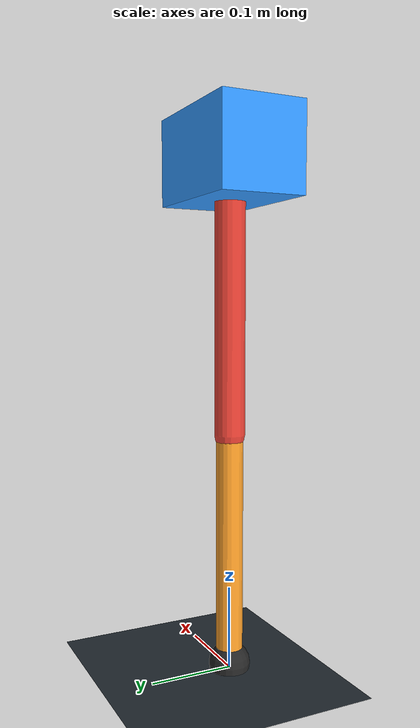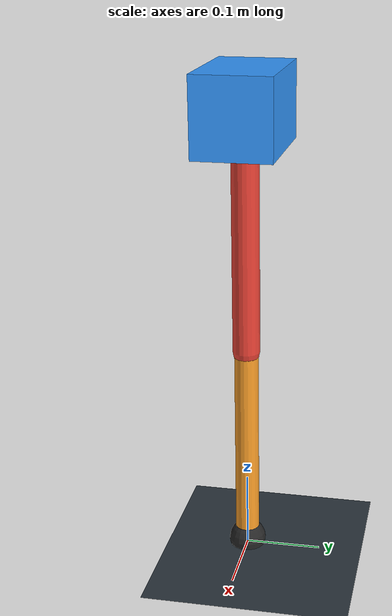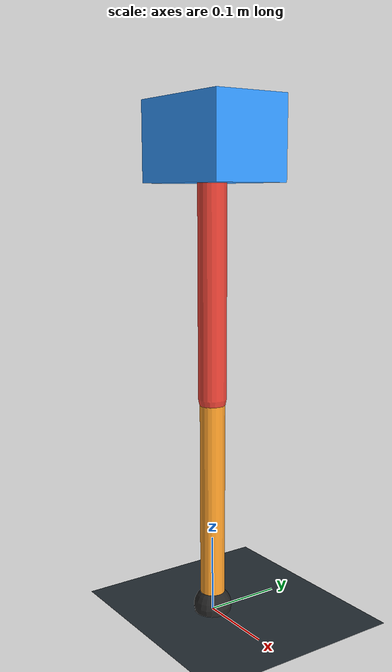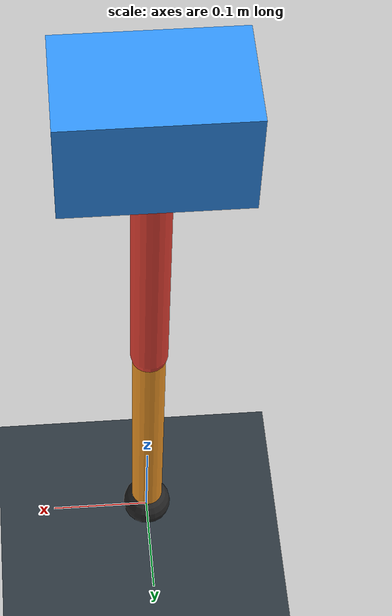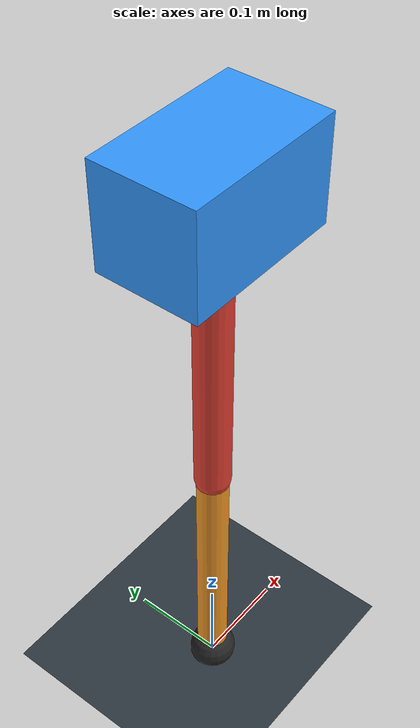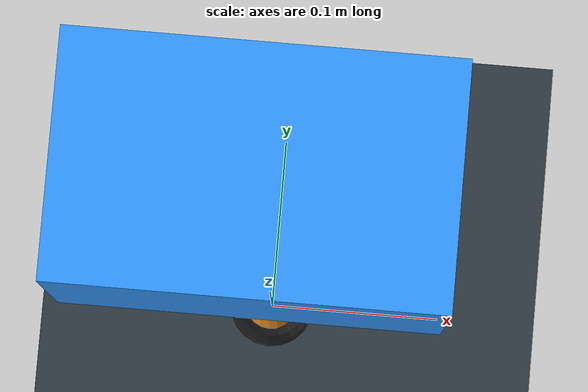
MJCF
<mujoco model="single_axis_two_bar">
  <compiler angle="radian" inertiafromgeom="true"/>
  <option timestep="0.001" integrator="implicitfast" gravity="0 0 -9.81"/>
  <default>
    <joint damping="0.08"/>
    <geom friction="1.2 0.01 0.0001" condim="3"/>
  </default>
  <worldbody>
    <geom name="floor" type="plane" size="5 5 0.1" rgba="0.18 0.22 0.25 1"/>
    <body name="carriage" pos="0 0 0.6041659004695198">
      <joint name="pole_slide" type="slide" axis="0 0 1"/>
      <geom name="payload" type="box" size="0.08 0.05 0.05" mass="2.715211322438798" rgba="0.2 0.6 1 1"/>
      <body name="thigh" pos="0 0 0">
        <joint name="hip" type="hinge" axis="0 1 0"/>
        <geom name="thigh_link" type="capsule" fromto="0 0 0 0 0 -0.31753370267738423" size="0.018" mass="0.22624695899532526" rgba="0.9 0.25 0.2 1"/>
        <body name="shank" pos="0 0 -0.31753370267738423">
          <joint name="knee" type="hinge" axis="0 1 0"/>
          <geom name="shank_link" type="capsule" fromto="0 0 0 0 0 -0.27954454522933714" size="0.016" mass="0.19917918233116513" rgba="0.95 0.6 0.15 1"/>
          <geom name="foot" type="sphere" pos="0 0 -0.27954454522933714" size="0.025" mass="0.03" rgba="0.15 0.15 0.15 1"/>
          <site name="toe" pos="0 0 -0.27954454522933714" size="0.008"/>
        </body>
      </body>
    </body>
  </worldbody>
  <actuator>
    <motor name="hip_motor" joint="hip" ctrlrange="-23.20576684538886 23.20576684538886"/>
    <motor name="knee_motor" joint="knee" ctrlrange="-100.940253746663 100.940253746663"/>
  </actuator>
</mujoco>
